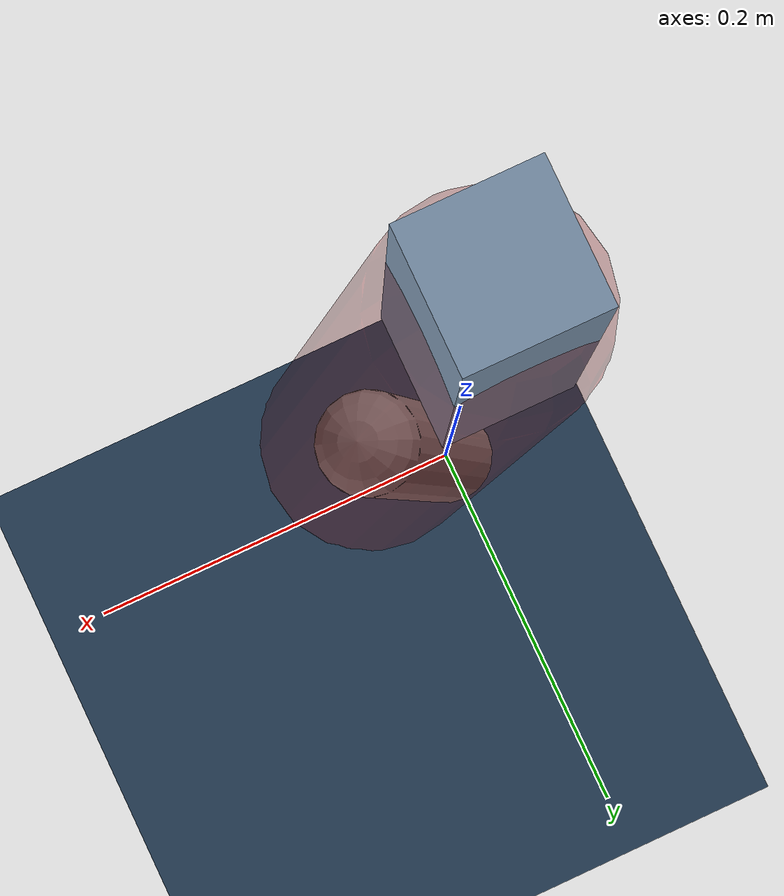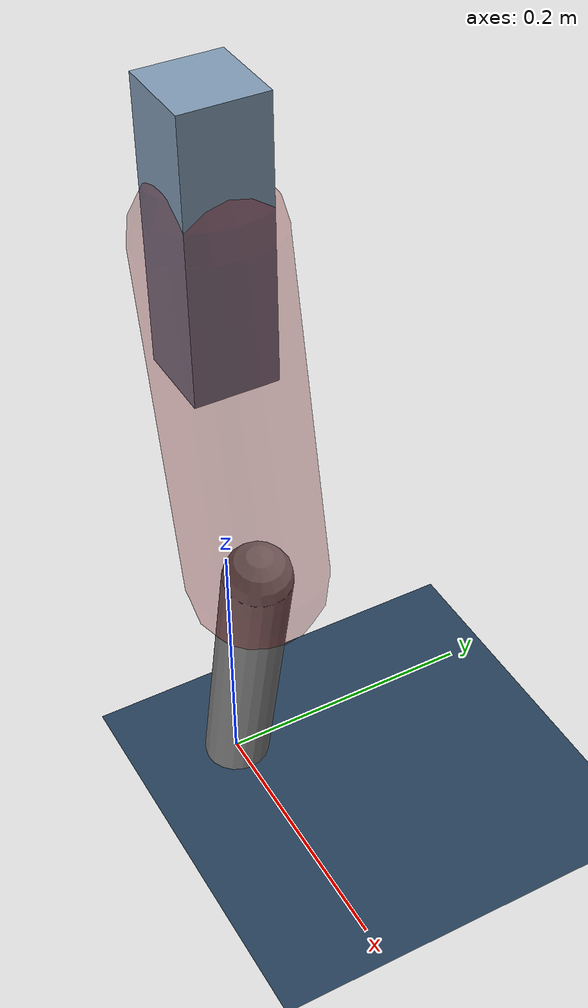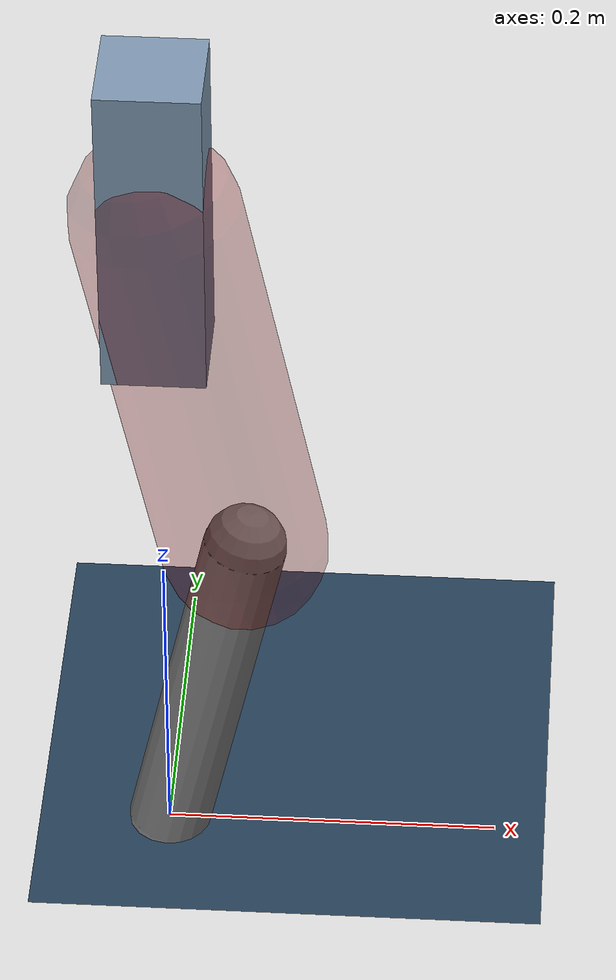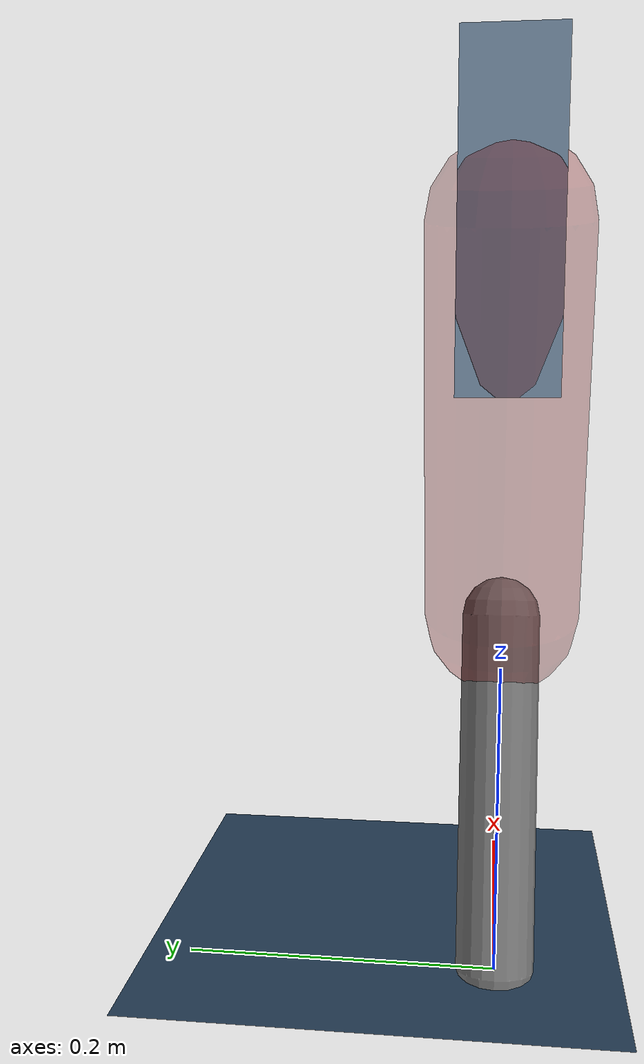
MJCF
<mujoco model="Hopper2D">
	<compiler inertiafromgeom="true" angle="radian" />
	<option timestep="0.001" integrator="implicit" cone="elliptic" solver="Newton" tolerance="1e-10" />

	<default>
		<geom contype="1" conaffinity="1" condim="3" friction="2 0.005 0.0001" solref="0.005 1" />
		<joint limited="true" damping="0.1" />
	</default>

	<asset>
		<texture name="skybox" type="skybox" builtin="gradient" rgb1=".4 .6 .8" rgb2="0 0 0" width="800" height="800" />
		<texture name="grid" type="2d" builtin="checker" rgb1=".1 .2 .3" rgb2=".2 .3 .4" width="300" height="300" mark="edge" markrgb=".2 .3 .4" />
		<material name="ground" texture="grid" texrepeat="1 1" texuniform="true" reflectance="0.1" />
		<material name="leg" rgba="0.5 0.6 0.7 1" />
	</asset>

	<worldbody>

		<geom name="floor" type="plane" size="5 5 0.25" material="ground" />

		<light directional="false" diffuse="0.8 0.8 0.8" specular="0.3 0.3 0.3" pos="0 0 2" dir="0 0 -1" />
		<light mode="targetbodycom" target="base" directional="false" diffuse="0.8 0.8 0.8" specular="0.3 0.3 0.3" pos="0 0 2" dir="0 0 -1" />

		<camera name="fixed" pos="0 -2 1" xyaxes="1 0 0 0 0 1" />
		<camera name="tracking" mode="trackcom" pos="0 -3 1" />

		<body name="root" pos="0 0 0.46656911118809485">
			<joint name="slide_x" type="slide" axis="1 0 0" range="-100 100" />
			<joint name="slide_z" type="slide" axis="0 0 1" range="0 10" />

			<body name="base" pos="0 0 0">
				<geom name="torso" type="box" size="0.03 0.03 0.1" mass="3.4669999999999996" material="leg" />

				<body name="link1" pos="0 0 0" euler="0 1.374236922142378 0">
					<joint type="hinge" axis="0 -1 0" pos="0 0 0" name="hinge1" limited="true" range="-3.14 3.14" stiffness="0" damping="0.1" />
					<geom name="thigh" type="capsule" fromto="0 0 0 0.24840204848688785 0 0" size="0.05" rgba="0.5 0 0 0.3" mass="0.8522453260659084" />

					<body name="link2" pos="0.24840204848688785 0 0" euler="0 0.410810779334324 0">
						<joint type="hinge" axis="0 -1 0" pos="0 0 0" name="hinge2" limited="true" range="-3.14 3.14" stiffness="0" damping="0.1" />
						<geom name="shank" type="capsule" fromto="0 0 0 0.22816706270120699 0 0" size="0.025" mass="0.4244503564310863" />

					</body>
				</body>
			</body>
		</body>
	</worldbody>

	<actuator>
		<motor name="torque1" joint="hinge1" ctrlrange="-153.47424036730155 153.47424036730155" ctrllimited="true" gear="1" />
		<motor name="torque2" joint="hinge2" ctrlrange="-36.90594727209895 36.90594727209895" ctrllimited="true" gear="1" />
	</actuator>
</mujoco>
